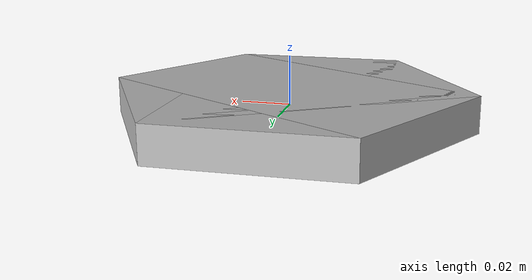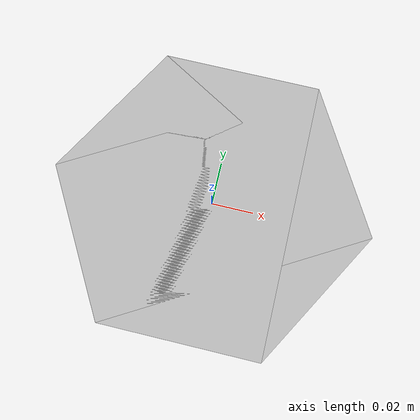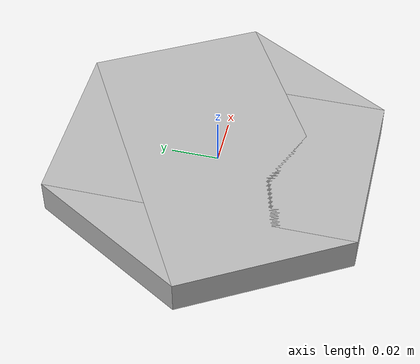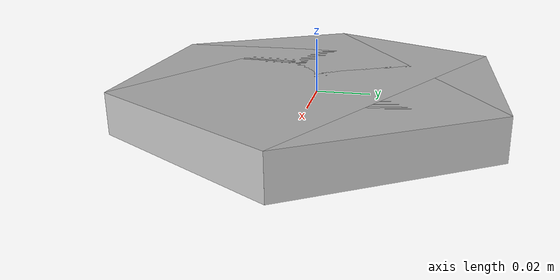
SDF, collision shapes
<?xml version="1.0"?>
<sdf version="1.6">
  <model name="hexagon_green_model">
  <static>false</static>
  <link name="hexagon_green_link">

      <collision name="hexagon_green_collision_box_1">
        <pose>0.0 0.0 0.0 0.0 0.0 0.5235988 </pose>
        <geometry>
          <box>
            <size>0.1299 0.075 0.015</size>
          </box>
        </geometry>
        <surface>
          <friction>
            <ode>
              <mu>0.5</mu>
              <mu2>0.5</mu2>
            </ode>
          </friction>
        </surface>
      </collision>
      <collision name="hexagon_green_collision_box_2">
        <pose>0.0 0.0 0.0 0.0 0.0 -0.5235988 </pose>
        <geometry>
          <box>
            <size>0.1299 0.075 0.015</size>
          </box>
        </geometry>
        <surface>
          <friction>
            <ode>
              <mu>0.5</mu>
              <mu2>0.5</mu2>
            </ode>
          </friction>
        </surface>
      </collision>
      <collision name="hexagon_green_collision_box_3">
        <pose>0.0 0.0 0.0 0.0 0.0 1.5707 </pose>
        <geometry>
          <box>
            <size>0.1299 0.075 0.015</size>
          </box>
        </geometry>
        <surface>
          <friction>
            <ode>
              <mu>0.5</mu>
              <mu2>0.5</mu2>
            </ode>
          </friction>
        </surface>
      </collision>

      <inertial>
        <inertia> <!-- Iniertia parameters 10x smaller then the correct values to be more stable in simulation -->
          <ixx>0.000703</ixx>
          <ixy>0</ixy>
          <ixz>0</ixz>
          <iyy>0.000703</iyy>
          <iyz>0</iyz>
          <izz>0.000703</izz>
        </inertia>
        <mass>0.1</mass>
      </inertial>
      <visual name="hexagon_green_visual">
        <geometry>
          <mesh>
            <uri>model://eurobot_22/hexagon_green/meshes/hexagon_green.glb</uri>
            <scale>1.0 1.0 1.0</scale>
          </mesh>
        </geometry>
      </visual>
    </link>
  </model>
</sdf>
